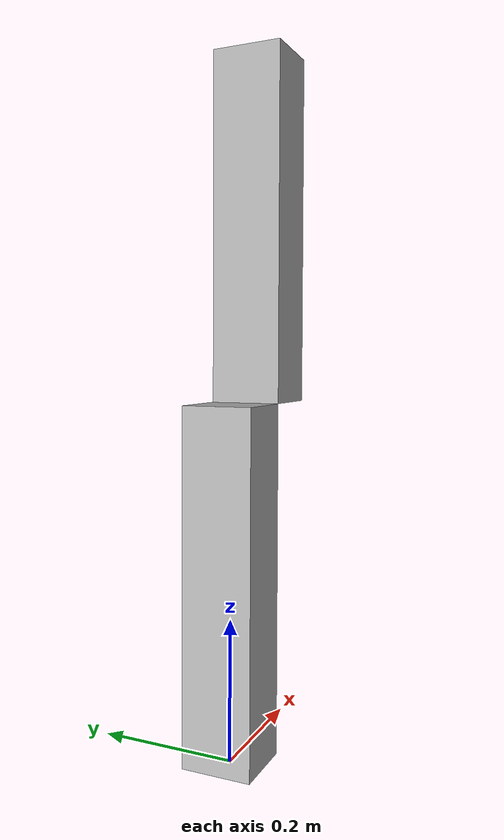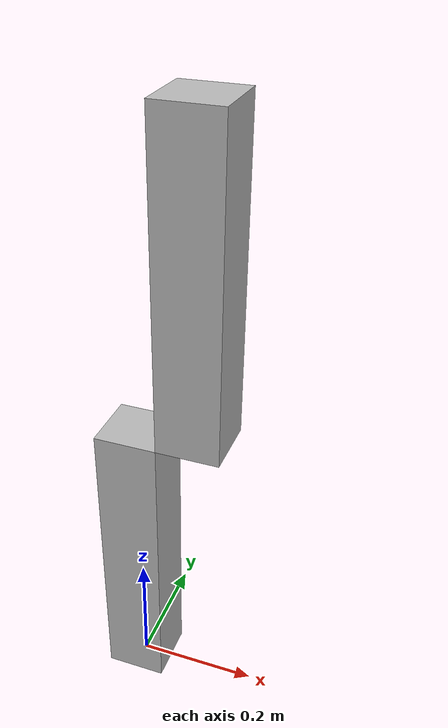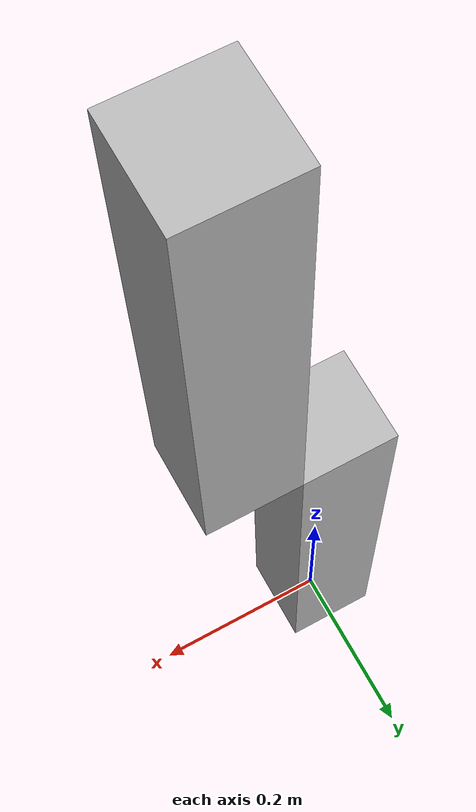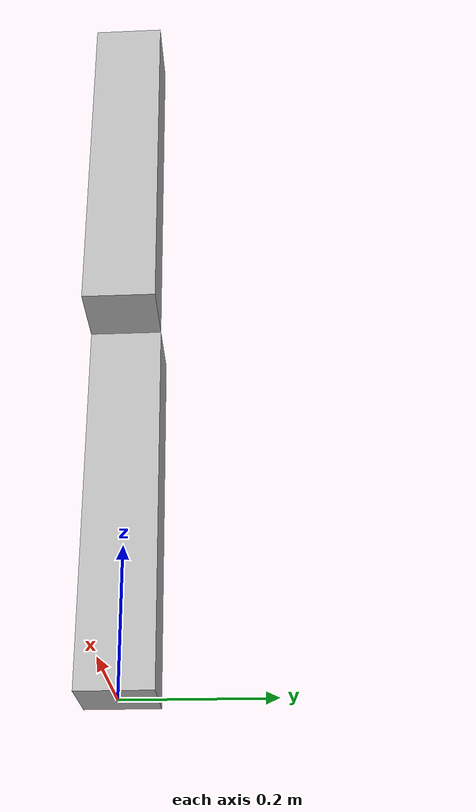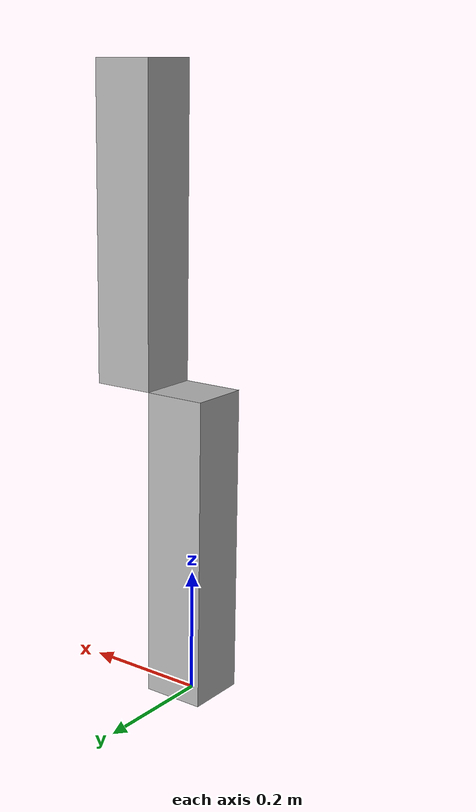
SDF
<?xml version="1.0"?>
<sdf version="1.5">
<model name="two_link_arm">

  <!-- link0 -->
  <link name="link0">
    <pose>0 0 0.25 0 0 0</pose>

    <inertial>
      <mass>1.0</mass>
      <inertia>
        <ixx>0.002</ixx>
        <iyy>0.002</iyy>
        <izz>0.001</izz>
        <ixy>0</ixy>
        <ixz>0</ixz>
        <iyz>0</iyz>
      </inertia>
    </inertial>

    <collision name="collision">
      <geometry>
      <box>
      <size>0.1 0.1 0.5</size>
      </box>
      </geometry>
    </collision>

    <visual name="visual">
      <geometry>
      <box>
      <size>0.1 0.1 0.5</size>
      </box>
      </geometry>
    </visual>
  </link>

  <!-- link1 -->
  <link name="link1">
    <pose>0.1 0 0.75 0 0 0</pose>

    <inertial>
      <mass>1.0</mass>
      <inertia>
        <ixx>0.002</ixx>
        <iyy>0.002</iyy>
        <izz>0.001</izz>
        <ixy>0</ixy>
        <ixz>0</ixz>
        <iyz>0</iyz>
      </inertia>
    </inertial>

    <collision name="collision">
      <geometry>
      <box>
      <size>0.1 0.1 0.5</size>
      </box>
      </geometry>
    </collision>

    <visual name="visual">
      <geometry>
      <box>
      <size>0.1 0.1 0.5</size>
      </box>
      </geometry>
    </visual>
  </link>

  <!-- joint1 -->
  <joint type="revolute" name="joint">
    <!-- Position the joint at the bottom of the top link -->
    <pose>0 0 0.5 0 0 0</pose>
    <parent>link0</parent>
    <child>link1</child>
    <!-- The axis defines the joint's degree of freedom -->
    <axis>
      <!-- Revolve around the z-axis -->
      <xyz>0 0 1</xyz>
      <!-- Limit refers to the range of motion of the joint -->
      <limit>
      <lower>-2.5</lower>
      <upper>2.5</upper>
      </limit>
    </axis>
  </joint>

</model>
</sdf>
